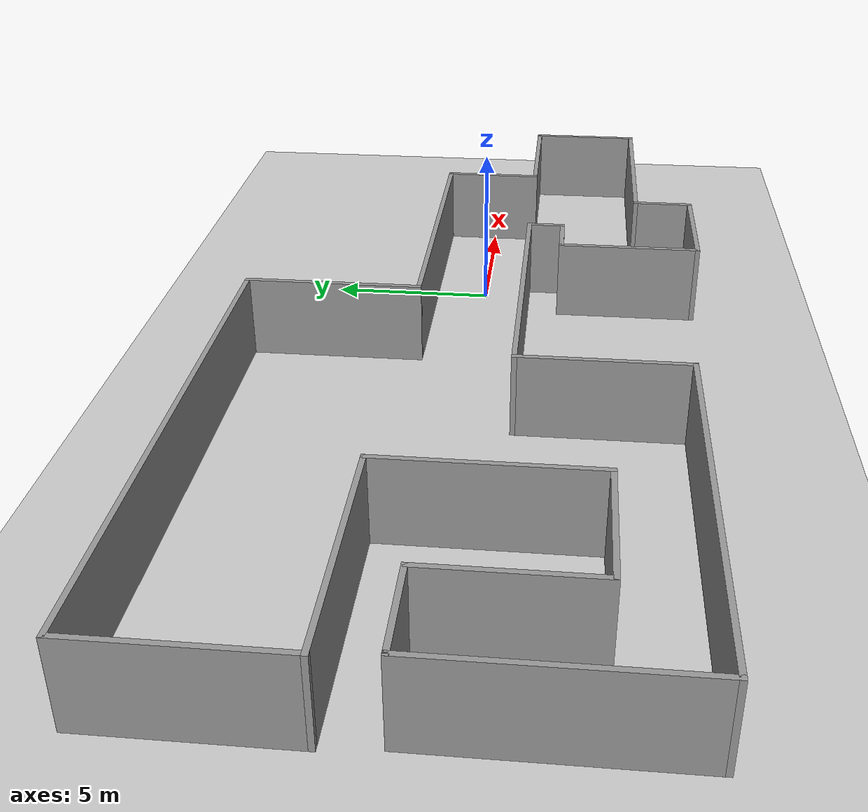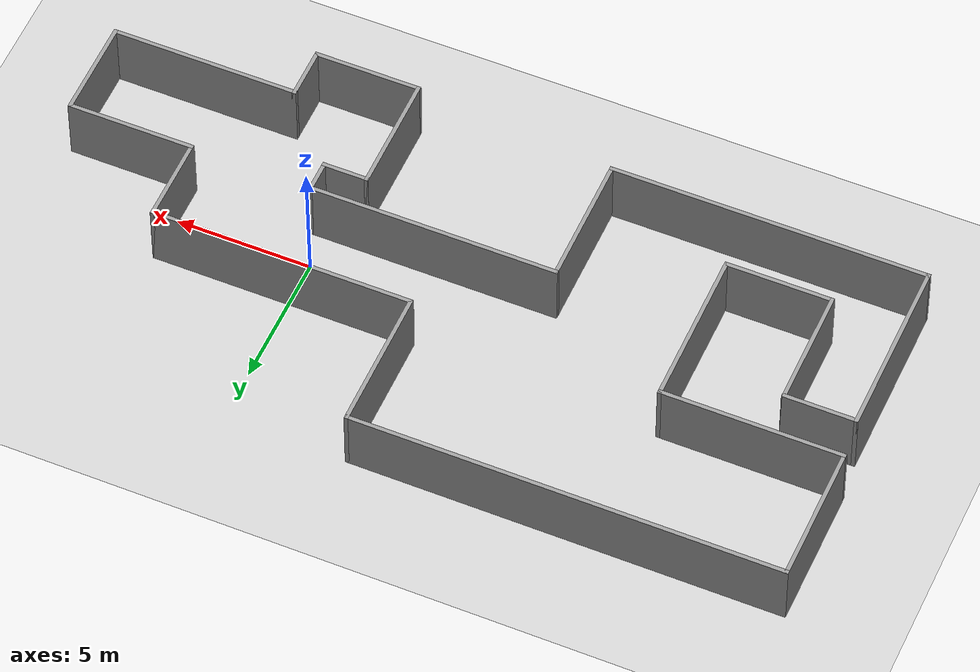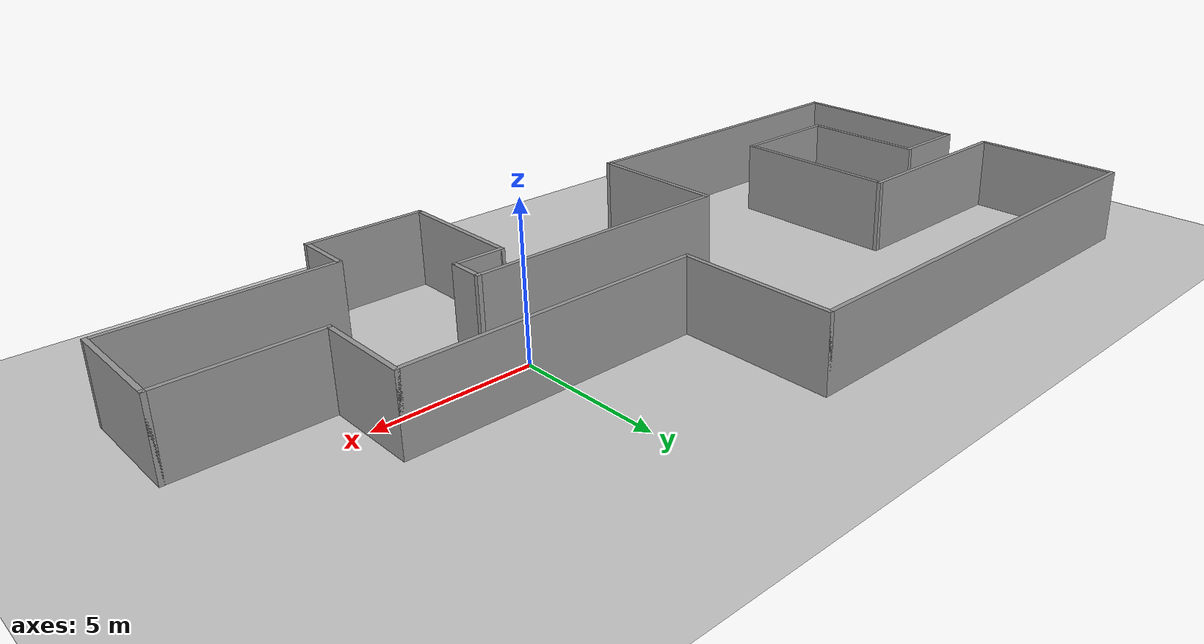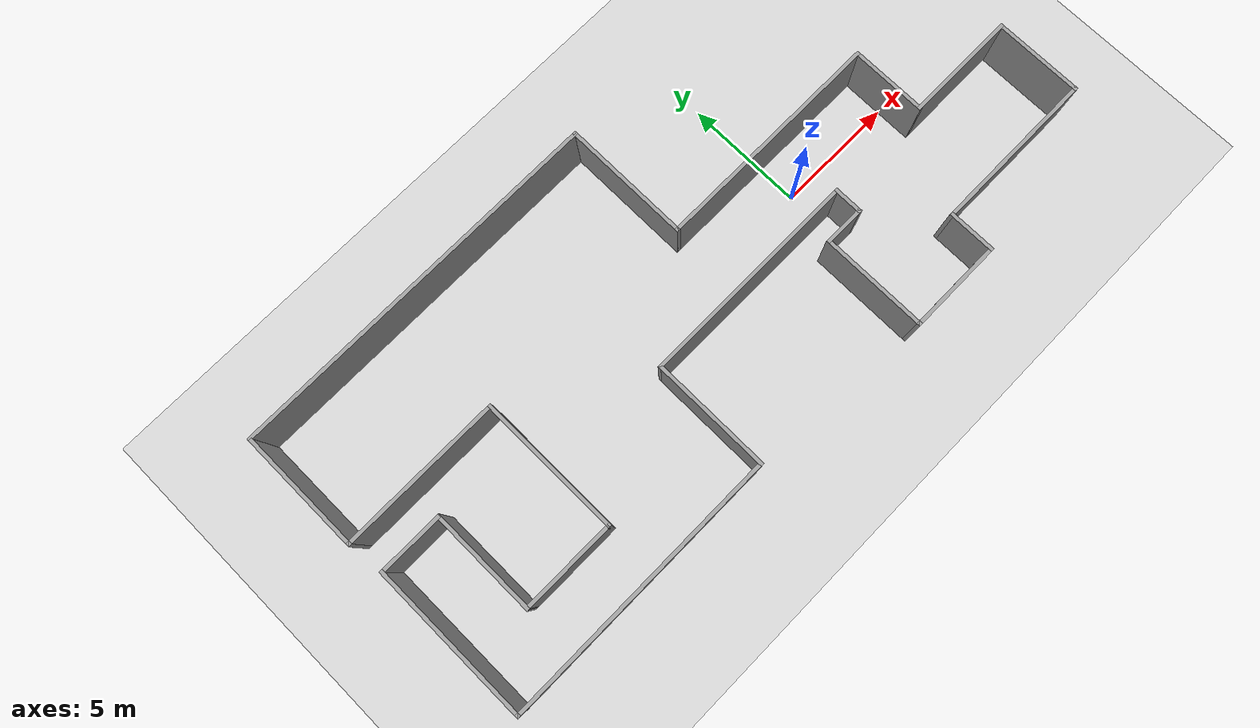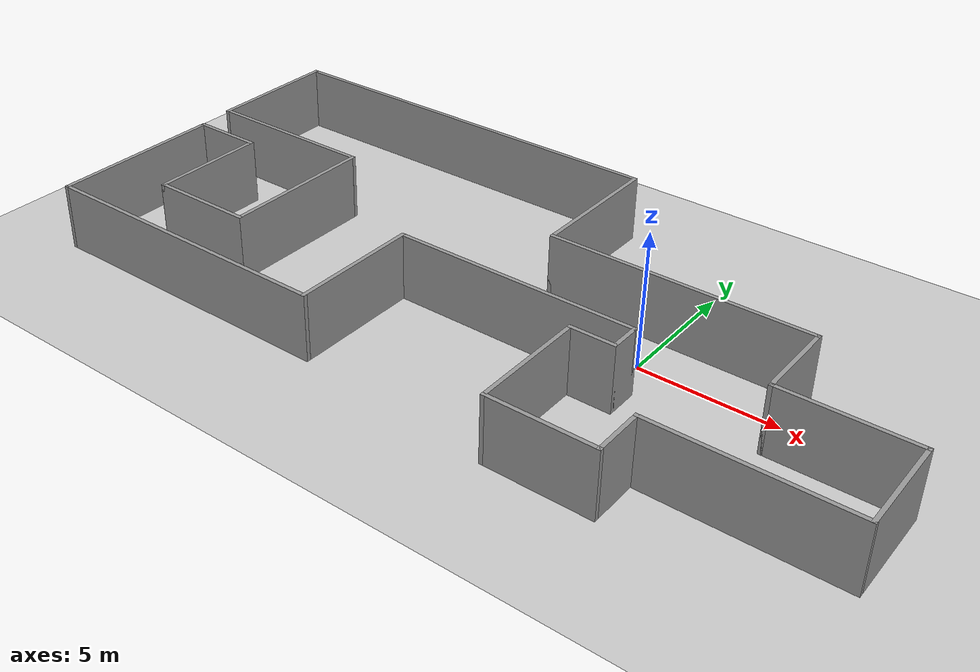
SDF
<sdf version="1.7">
 <world name="default">
  <light name="sun" type="directional">
   <pose>0 0 10 0 -0 0</pose>
   <diffuse>0.8 0.8 0.8 1</diffuse>
   <specular>0.2 0.2 0.2 1</specular>
   <attenuation>
    <range>1000</range>
    <constant>0.9</constant>
    <linear>0.01</linear>
    <quadratic>0.001</quadratic>
   </attenuation>
   <direction>-0.5 0.1 -0.9</direction>
   <spot><inner_angle>0</inner_angle><outer_angle>0</outer_angle><falloff>0</falloff></spot>
  </light>
  <model name="ground_plane">
   <static>1</static>
   <link name="link">
    <collision name="collision">
     <geometry><plane><normal>0 0 1</normal><size>100 100</size></plane></geometry>
     <surface><friction><ode><mu>100</mu><mu2>50</mu2></ode></friction></surface>
    </collision>
    <visual name="visual">
     <cast_shadows>0</cast_shadows>
     <geometry><plane><normal>0 0 1</normal><size>100 100</size></plane></geometry>
     <material>
      <script><uri>file://media/materials/scripts/gazebo.material</uri><name>Gazebo/Grey</name></script>
     </material>
    </visual>
   </link>
  </model>
  <gravity>0 0 -9.8</gravity>
  <magnetic_field>6e-06 2.3e-05 -4.2e-05</magnetic_field>
  <atmosphere type="adiabatic"/>
  <physics type="ode">
   <max_step_size>0.001</max_step_size>
   <real_time_factor>1</real_time_factor>
   <real_time_update_rate>1000</real_time_update_rate>
  </physics>
  <scene><ambient>0.4 0.4 0.4 1</ambient><background>0.7 0.7 0.7 1</background><shadows>1</shadows></scene>
  <audio><device>default</device></audio>
  <spherical_coordinates>
   <surface_model>EARTH_WGS84</surface_model>
   <latitude_deg>0</latitude_deg>
   <longitude_deg>0</longitude_deg>
   <elevation>0</elevation>
   <heading_deg>0</heading_deg>
  </spherical_coordinates>
  <model name="JackB_W1Fp">
   <pose>-5.32861 0.034225 0 0 -0 0</pose>
   <link name="Wall_0">
    <collision name="Wall_0_Collision">
     <geometry><box><size>9.75 0.15 2.5</size></box></geometry>
     <pose>0 0 1.25 0 -0 0</pose>
    </collision>
    <visual name="Wall_0_Visual">
     <pose>0 0 1.25 0 -0 0</pose>
     <geometry><box><size>9.75 0.15 2.5</size></box></geometry>
     <material>
      <script><uri>file://media/materials/scripts/gazebo.material</uri><name>Gazebo/Grey</name></script>
      <ambient>1 1 1 1</ambient>
     </material>
     <meta><layer>0</layer></meta>
    </visual>
    <pose>5.575 1.65 0 0 -0 0</pose>
   </link>
   <link name="Wall_1">
    <collision name="Wall_1_Collision">
     <geometry><box><size>3.25 0.15 2.5</size></box></geometry>
     <pose>0 0 1.25 0 -0 0</pose>
    </collision>
    <visual name="Wall_1_Visual">
     <pose>0 0 1.25 0 -0 0</pose>
     <geometry><box><size>3.25 0.15 2.5</size></box></geometry>
     <material>
      <script><uri>file://media/materials/scripts/gazebo.material</uri><name>Gazebo/Grey</name></script>
      <ambient>1 1 1 1</ambient>
     </material>
     <meta><layer>0</layer></meta>
    </visual>
    <pose>10.375 0.1 0 0 -0 -1.5708</pose>
   </link>
   <link name="Wall_10">
    <collision name="Wall_10_Collision">
     <geometry><box><size>2 0.15 2.5</size></box></geometry>
     <pose>0 0 1.25 0 -0 0</pose>
    </collision>
    <visual name="Wall_10_Visual">
     <pose>0 0 1.25 0 -0 0</pose>
     <geometry><box><size>2 0.15 2.5</size></box></geometry>
     <material>
      <script><uri>file://media/materials/scripts/gazebo.material</uri><name>Gazebo/Grey</name></script>
      <ambient>1 1 1 1</ambient>
     </material>
     <meta><layer>0</layer></meta>
    </visual>
    <pose>8.125 -5.975 0 0 -0 -1.5708</pose>
   </link>
   <link name="Wall_11">
    <collision name="Wall_11_Collision">
     <geometry><box><size>4 0.15 2.5</size></box></geometry>
     <pose>0 0 1.25 0 -0 0</pose>
    </collision>
    <visual name="Wall_11_Visual">
     <pose>0 0 1.25 0 -0 0</pose>
     <geometry><box><size>4 0.15 2.5</size></box></geometry>
     <material>
      <script><uri>file://media/materials/scripts/gazebo.material</uri><name>Gazebo/Grey</name></script>
      <ambient>1 1 1 1</ambient>
     </material>
     <meta><layer>0</layer></meta>
    </visual>
    <pose>6.2 -6.9 0 0 -0 3.14159</pose>
   </link>
   <link name="Wall_12">
    <collision name="Wall_12_Collision">
     <geometry><box><size>4.5 0.15 2.5</size></box></geometry>
     <pose>0 0 1.25 0 -0 0</pose>
    </collision>
    <visual name="Wall_12_Visual">
     <pose>0 0 1.25 0 -0 0</pose>
     <geometry><box><size>4.5 0.15 2.5</size></box></geometry>
     <material>
      <script><uri>file://media/materials/scripts/gazebo.material</uri><name>Gazebo/Grey</name></script>
      <ambient>1 1 1 1</ambient>
     </material>
     <meta><layer>0</layer></meta>
    </visual>
    <pose>4.275 -4.725 0 0 -0 1.5708</pose>
   </link>
   <link name="Wall_13">
    <collision name="Wall_13_Collision">
     <geometry><box><size>1.75 0.15 2.5</size></box></geometry>
     <pose>0 0 1.25 0 -0 0</pose>
    </collision>
    <visual name="Wall_13_Visual">
     <pose>0 0 1.25 0 -0 0</pose>
     <geometry><box><size>1.75 0.15 2.5</size></box></geometry>
     <material>
      <script><uri>file://media/materials/scripts/gazebo.material</uri><name>Gazebo/Grey</name></script>
      <ambient>1 1 1 1</ambient>
     </material>
     <meta><layer>0</layer></meta>
    </visual>
    <pose>5.075 -2.55 0 0 -0 0</pose>
   </link>
   <link name="Wall_14">
    <collision name="Wall_14_Collision">
     <geometry><box><size>1.25 0.15 2.5</size></box></geometry>
     <pose>0 0 1.25 0 -0 0</pose>
    </collision>
    <visual name="Wall_14_Visual">
     <pose>0 0 1.25 0 -0 0</pose>
     <geometry><box><size>1.25 0.15 2.5</size></box></geometry>
     <material>
      <script><uri>file://media/materials/scripts/gazebo.material</uri><name>Gazebo/Grey</name></script>
      <ambient>1 1 1 1</ambient>
     </material>
     <meta><layer>0</layer></meta>
    </visual>
    <pose>5.875 -2 0 0 -0 1.5708</pose>
   </link>
   <link name="Wall_15">
    <collision name="Wall_15_Collision">
     <geometry><box><size>9.25 0.15 2.5</size></box></geometry>
     <pose>0 0 1.25 0 -0 0</pose>
    </collision>
    <visual name="Wall_15_Visual">
     <pose>0 0 1.25 0 -0 0</pose>
     <geometry><box><size>9.25 0.15 2.5</size></box></geometry>
     <material>
      <script><uri>file://media/materials/scripts/gazebo.material</uri><name>Gazebo/Grey</name></script>
      <ambient>1 1 1 1</ambient>
     </material>
     <meta><layer>0</layer></meta>
    </visual>
    <pose>1.325 -1.45 0 0 -0 3.14159</pose>
   </link>
   <link name="Wall_16">
    <collision name="Wall_16_Collision">
     <geometry><box><size>5 0.15 2.5</size></box></geometry>
     <pose>0 0 1.25 0 -0 0</pose>
    </collision>
    <visual name="Wall_16_Visual">
     <pose>0 0 1.25 0 -0 0</pose>
     <geometry><box><size>5 0.15 2.5</size></box></geometry>
     <material>
      <script><uri>file://media/materials/scripts/gazebo.material</uri><name>Gazebo/Grey</name></script>
      <ambient>1 1 1 1</ambient>
     </material>
     <meta><layer>0</layer></meta>
    </visual>
    <pose>-3.225 -3.875 0 0 -0 -1.5708</pose>
   </link>
   <link name="Wall_17">
    <collision name="Wall_17_Collision">
     <geometry><box><size>11.75 0.15 2.5</size></box></geometry>
     <pose>0 0 1.25 0 -0 0</pose>
    </collision>
    <visual name="Wall_17_Visual">
     <pose>0 0 1.25 0 -0 0</pose>
     <geometry><box><size>11.75 0.15 2.5</size></box></geometry>
     <material>
      <script><uri>file://media/materials/scripts/gazebo.material</uri><name>Gazebo/Grey</name></script>
      <ambient>1 1 1 1</ambient>
     </material>
     <meta><layer>0</layer></meta>
    </visual>
    <pose>-9.025 -6.3 0 0 -0 3.14159</pose>
   </link>
   <link name="Wall_18">
    <collision name="Wall_18_Collision">
     <geometry><box><size>6.75 0.15 2.5</size></box></geometry>
     <pose>0 0 1.25 0 -0 0</pose>
    </collision>
    <visual name="Wall_18_Visual">
     <pose>0 0 1.25 0 -0 0</pose>
     <geometry><box><size>6.75 0.15 2.5</size></box></geometry>
     <material>
      <script><uri>file://media/materials/scripts/gazebo.material</uri><name>Gazebo/Grey</name></script>
      <ambient>1 1 1 1</ambient>
     </material>
     <meta><layer>0</layer></meta>
    </visual>
    <pose>-14.825 -3 0 0 -0 1.5708</pose>
   </link>
   <link name="Wall_19">
    <collision name="Wall_19_Collision">
     <geometry><box><size>2.75 0.15 2.5</size></box></geometry>
     <pose>0 0 1.25 0 -0 0</pose>
    </collision>
    <visual name="Wall_19_Visual">
     <pose>0 0 1.25 0 -0 0</pose>
     <geometry><box><size>2.75 0.15 2.5</size></box></geometry>
     <material>
      <script><uri>file://media/materials/scripts/gazebo.material</uri><name>Gazebo/Grey</name></script>
      <ambient>1 1 1 1</ambient>
     </material>
     <meta><layer>0</layer></meta>
    </visual>
    <pose>-13.525 0.3 0 0 -0 0</pose>
   </link>
   <link name="Wall_20">
    <collision name="Wall_20_Collision">
     <geometry><box><size>4.5 0.15 2.5</size></box></geometry>
     <pose>0 0 1.25 0 -0 0</pose>
    </collision>
    <visual name="Wall_20_Visual">
     <pose>0 0 1.25 0 -0 0</pose>
     <geometry><box><size>4.5 0.15 2.5</size></box></geometry>
     <material>
      <script><uri>file://media/materials/scripts/gazebo.material</uri><name>Gazebo/Grey</name></script>
      <ambient>1 1 1 1</ambient>
     </material>
     <meta><layer>0</layer></meta>
    </visual>
    <pose>-12.225 -1.875 0 0 -0 -1.5708</pose>
   </link>
   <link name="Wall_21">
    <collision name="Wall_21_Collision">
     <geometry><box><size>4 0.15 2.5</size></box></geometry>
     <pose>0 0 1.25 0 -0 0</pose>
    </collision>
    <visual name="Wall_21_Visual">
     <pose>0 0 1.25 0 -0 0</pose>
     <geometry><box><size>4 0.15 2.5</size></box></geometry>
     <material>
      <script><uri>file://media/materials/scripts/gazebo.material</uri><name>Gazebo/Grey</name></script>
      <ambient>1 1 1 1</ambient>
     </material>
     <meta><layer>0</layer></meta>
    </visual>
    <pose>-10.3 -4.05 0 0 -0 0</pose>
   </link>
   <link name="Wall_22">
    <collision name="Wall_22_Collision">
     <geometry><box><size>6 0.15 2.5</size></box></geometry>
     <pose>0 0 1.25 0 -0 0</pose>
    </collision>
    <visual name="Wall_22_Visual">
     <pose>0 0 1.25 0 -0 0</pose>
     <geometry><box><size>6 0.15 2.5</size></box></geometry>
     <material>
      <script><uri>file://media/materials/scripts/gazebo.material</uri><name>Gazebo/Grey</name></script>
      <ambient>1 1 1 1</ambient>
     </material>
     <meta><layer>0</layer></meta>
    </visual>
    <pose>-8.375 -1.125 0 0 -0 1.5708</pose>
   </link>
   <link name="Wall_23">
    <collision name="Wall_23_Collision">
     <geometry><box><size>6.75 0.15 2.5</size></box></geometry>
     <pose>0 0 1.25 0 -0 0</pose>
    </collision>
    <visual name="Wall_23_Visual">
     <pose>0 0 1.25 0 -0 0</pose>
     <geometry><box><size>6.75 0.15 2.5</size></box></geometry>
     <material>
      <script><uri>file://media/materials/scripts/gazebo.material</uri><name>Gazebo/Grey</name></script>
      <ambient>1 1 1 1</ambient>
     </material>
     <meta><layer>0</layer></meta>
    </visual>
    <pose>-11.675 1.8 0 0 -0 3.14159</pose>
   </link>
   <link name="Wall_3">
    <collision name="Wall_3_Collision">
     <geometry><box><size>4.75 0.15 2.5</size></box></geometry>
     <pose>0 0 1.25 0 -0 0</pose>
    </collision>
    <visual name="Wall_3_Visual">
     <pose>0 0 1.25 0 -0 0</pose>
     <geometry><box><size>4.75 0.15 2.5</size></box></geometry>
     <material>
      <script><uri>file://media/materials/scripts/gazebo.material</uri><name>Gazebo/Grey</name></script>
      <ambient>1 1 1 1</ambient>
     </material>
     <meta><layer>0</layer></meta>
    </visual>
    <pose>12.675 -1.45 0 0 -0 0</pose>
   </link>
   <link name="Wall_35">
    <collision name="Wall_35_Collision">
     <geometry><box><size>5.25 0.15 2.5</size></box></geometry>
     <pose>0 0 1.25 0 -0 0</pose>
    </collision>
    <visual name="Wall_35_Visual">
     <pose>0 0 1.25 0 -0 0</pose>
     <geometry><box><size>5.25 0.15 2.5</size></box></geometry>
     <material>
      <script><uri>file://media/materials/scripts/gazebo.material</uri><name>Gazebo/Grey</name></script>
      <ambient>1 1 1 1</ambient>
     </material>
     <meta><layer>0</layer></meta>
    </visual>
    <pose>-14.975 4.35 0 0 -0 1.5708</pose>
   </link>
   <link name="Wall_37">
    <collision name="Wall_37_Collision">
     <geometry><box><size>15.9 0.15 2.5</size></box></geometry>
     <pose>0 0 1.25 0 -0 0</pose>
    </collision>
    <visual name="Wall_37_Visual">
     <pose>0 0 1.25 0 -0 0</pose>
     <geometry><box><size>15.9 0.15 2.5</size></box></geometry>
     <material>
      <script><uri>file://media/materials/scripts/gazebo.material</uri><name>Gazebo/Grey</name></script>
      <ambient>1 1 1 1</ambient>
     </material>
     <meta><layer>0</layer></meta>
    </visual>
    <pose>-7.1 6.9 0 0 -0 0</pose>
   </link>
   <link name="Wall_38">
    <collision name="Wall_38_Collision">
     <geometry><box><size>5.4 0.15 2.5</size></box></geometry>
     <pose>0 0 1.25 0 -0 0</pose>
    </collision>
    <visual name="Wall_38_Visual">
     <pose>0 0 1.25 0 -0 0</pose>
     <geometry><box><size>5.4 0.15 2.5</size></box></geometry>
     <material>
      <script><uri>file://media/materials/scripts/gazebo.material</uri><name>Gazebo/Grey</name></script>
      <ambient>1 1 1 1</ambient>
     </material>
     <meta><layer>0</layer></meta>
    </visual>
    <pose>0.775001 4.275 0 0 -0 -1.5708</pose>
   </link>
   <link name="Wall_4">
    <collision name="Wall_4_Collision">
     <geometry><box><size>3.75 0.15 2.5</size></box></geometry>
     <pose>0 0 1.25 0 -0 0</pose>
    </collision>
    <visual name="Wall_4_Visual">
     <pose>0 0 1.25 0 -0 0</pose>
     <geometry><box><size>3.75 0.15 2.5</size></box></geometry>
     <material>
      <script><uri>file://media/materials/scripts/gazebo.material</uri><name>Gazebo/Grey</name></script>
      <ambient>1 1 1 1</ambient>
     </material>
     <meta><layer>0</layer></meta>
    </visual>
    <pose>14.975 -3.25 0 0 -0 -1.5708</pose>
   </link>
   <link name="Wall_9">
    <collision name="Wall_9_Collision">
     <geometry><box><size>7 0.15 2.5</size></box></geometry>
     <pose>0 0 1.25 0 -0 0</pose>
    </collision>
    <visual name="Wall_9_Visual">
     <pose>0 0 1.25 0 -0 0</pose>
     <geometry><box><size>7 0.15 2.5</size></box></geometry>
     <material>
      <script><uri>file://media/materials/scripts/gazebo.material</uri><name>Gazebo/Grey</name></script>
      <ambient>1 1 1 1</ambient>
     </material>
     <meta><layer>0</layer></meta>
    </visual>
    <pose>11.55 -5.05 0 0 -0 3.14159</pose>
   </link>
   <static>1</static>
  </model>
 </world>
</sdf>
